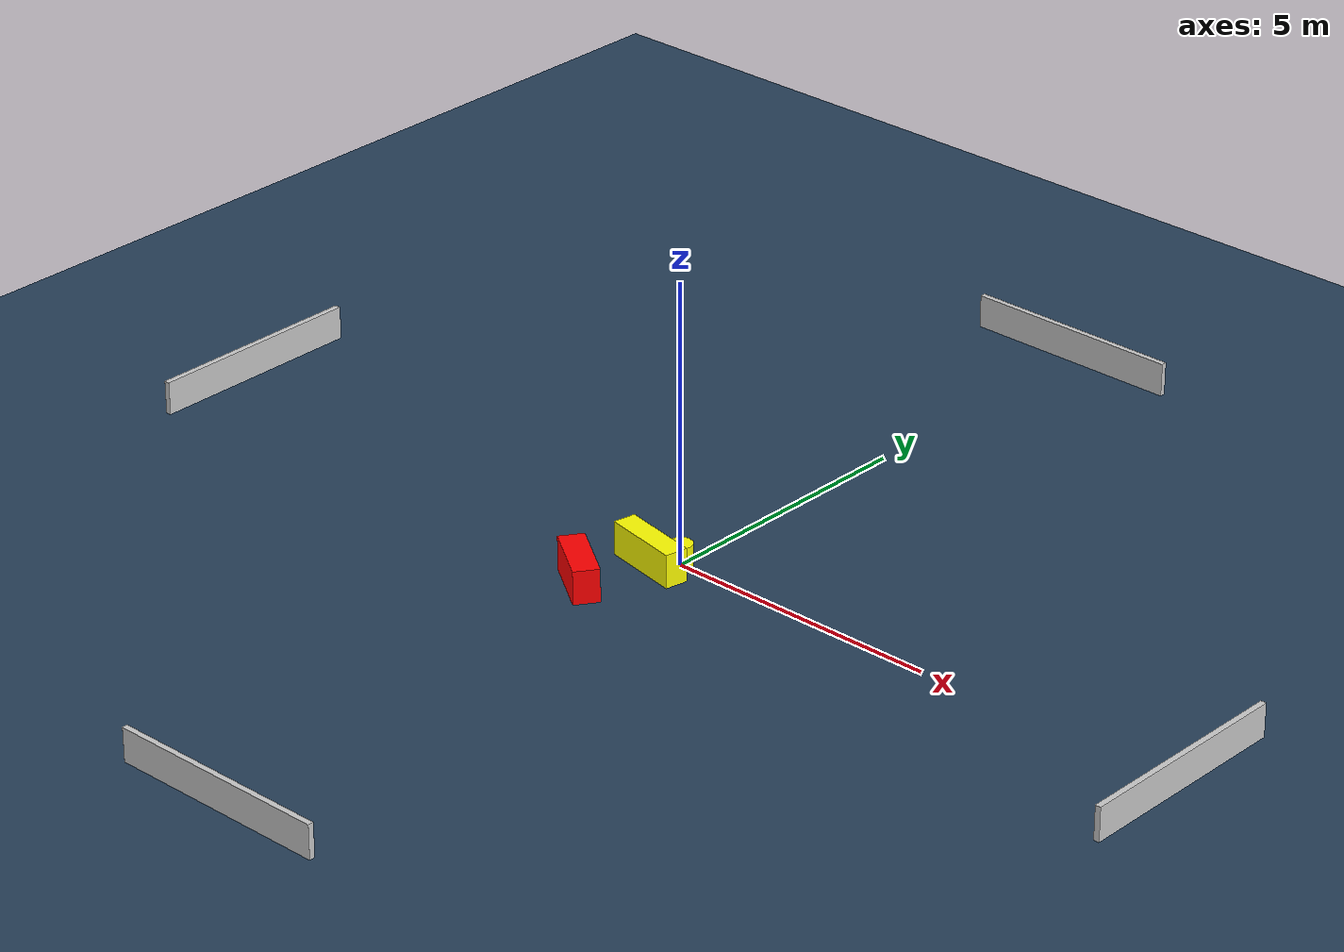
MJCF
<?xml version="1.0" ?>
<mujoco model="generated_environment">
  <option timestep="0.01" integrator="RK4" cone="elliptic"/>
  <default>
    <geom density="1"/>
  </default>
  <asset>
    <texture builtin="gradient" height="3072" name="skybox" rgb1="0.3 0.5 0.7" rgb2="0 0 0" type="skybox" width="512"/>
    <texture builtin="checker" height="300" name="groundplane" rgb1="0.2 0.3 0.4" rgb2="0.1 0.2 0.3" type="2d" width="300"/>
    <material name="groundplane" reflectance="0.2" texrepeat="5 5" texture="groundplane"/>
  </asset>
  <worldbody>
    <light dir="0 0 -1" directional="true" pos="0 0 1.5"/>
    <geom condim="3" friction="0.5 0.005 0.001" material="groundplane" name="floor" pos="0 0 0" size="0 0 0.05" type="plane"/>
    <body name="walls">
      <geom name="wall_1" condim="4" pos="-10.0 0.0 0.3" rgba="0.800000011920929 0.800000011920929 0.800000011920929 1.0" size="0.05 2.0 0.3" type="box"/>
      <geom name="wall_2" condim="4" pos="10.0 0.0 0.3" rgba="0.800000011920929 0.800000011920929 0.800000011920929 1.0" size="0.05 2.0 0.3" type="box"/>
      <geom name="wall_3" condim="4" pos="0.0 -10.0 0.3" rgba="0.800000011920929 0.800000011920929 0.800000011920929 1.0" size="2.0 0.05 0.3" type="box"/>
      <geom name="wall_4" condim="4" pos="0.0 10.0 0.3" rgba="0.800000011920929 0.800000011920929 0.800000011920929 1.0" size="2.0 0.05 0.3" type="box"/>
    </body>
    <body name="robot">
      <joint name="joint_x" type="slide" pos="0 0 0" axis="1 0 0"/>
      <joint name="joint_y" type="slide" pos="0 0 0" axis="0 1 0"/>
      <geom name="robot" type="cylinder" pos="0.0 0.0 0.2" size="0.2 0.2 0.0" mass="5.0" friction="1.0 0.005 0.0001" condim="4" rgba="1.0 1.0 0.0 1.0"/>
    </body>
    <body name="obstacle_1_movable">
      <geom name="obstacle_1_movable" condim="4" pos="-0.29721550328394797 -0.40057995240882927 0.3" euler="0 0 259.10439003438614" friction="0.0 0.005 0.001" rgba="1.0 1.0 0.0 1.0" size="0.20174683324942433 0.7051866604491761 0.3" type="box" mass="0.1"/>
      <joint type="free"/>
    </body>
    <body name="obstacle_2_static">
      <geom name="obstacle_2_static" condim="4" pos="-0.7353902674452423 -1.5930337589539578 0.3" euler="0 0 235.26443604098725" friction="0.0 0.005 0.001" rgba="1.0 0.0 0.0 1.0" size="0.22593035120734523 0.6048552045088083 0.3" type="box"/>
    </body>
  </worldbody>
  <actuator>
    <motor name="actuator_x" joint="joint_x" gear="1" ctrlrange="-1 1"/>
    <motor name="actuator_y" joint="joint_y" gear="1" ctrlrange="-1 1"/>
  </actuator>
</mujoco>
